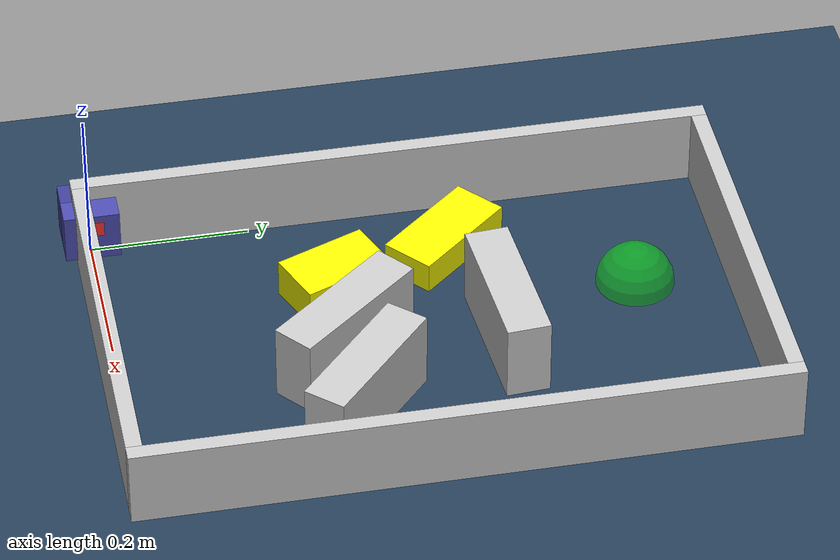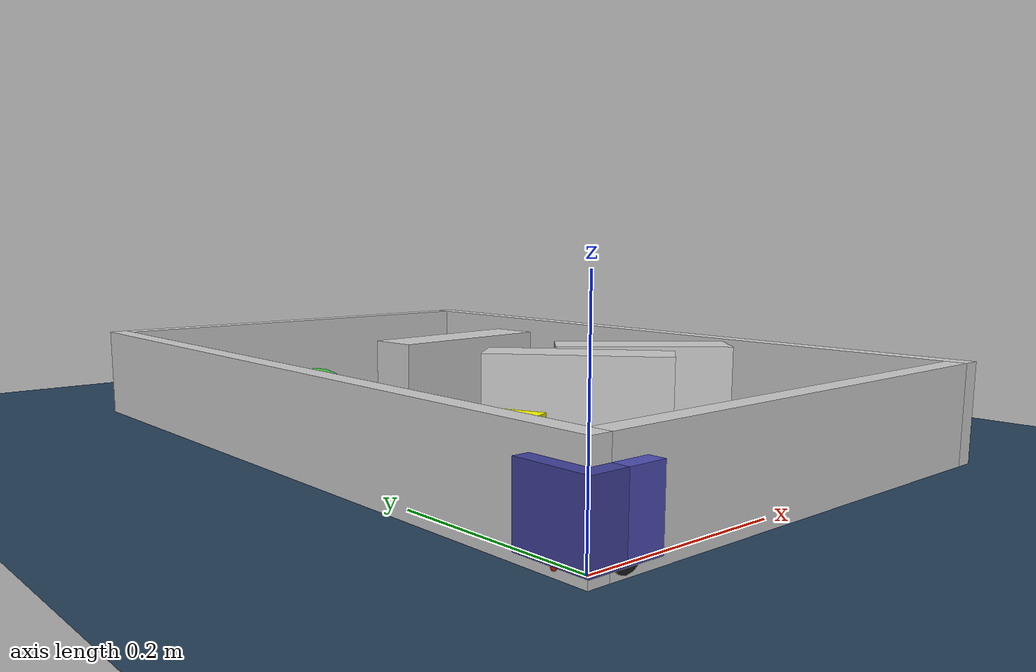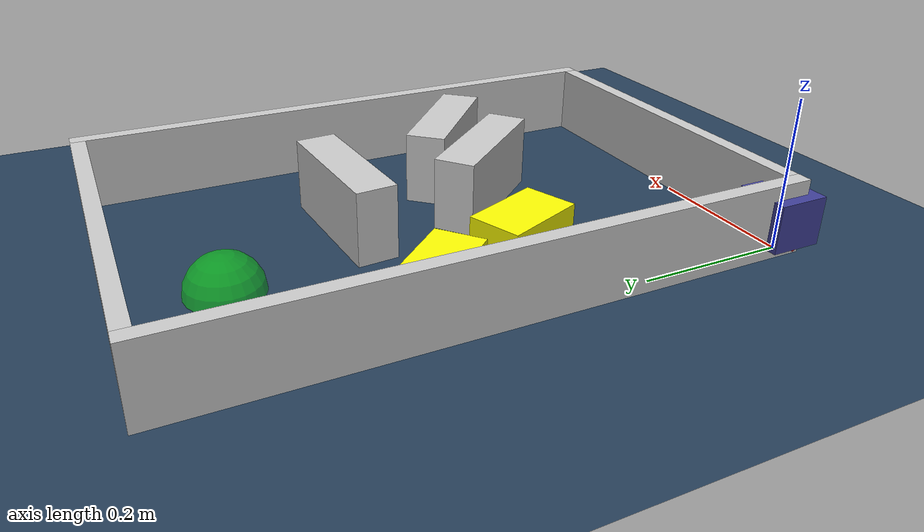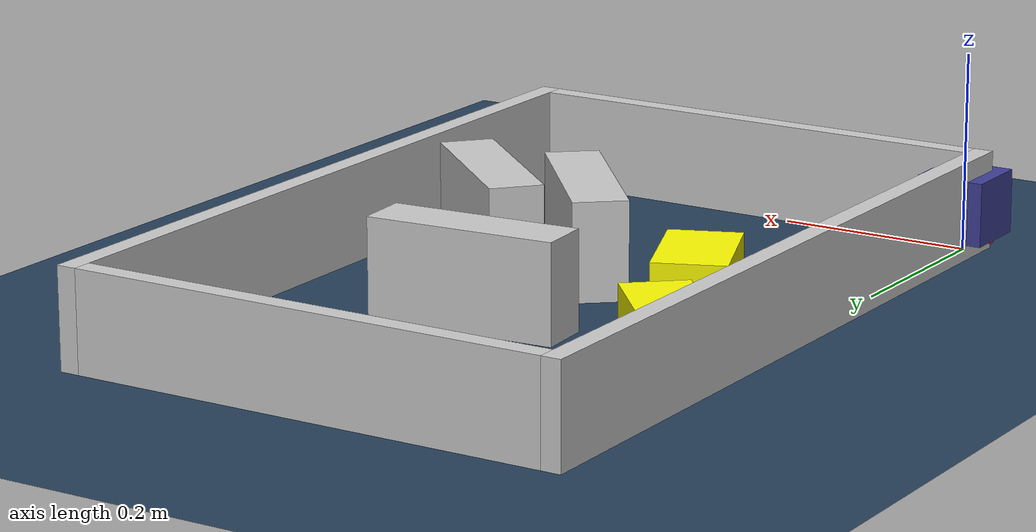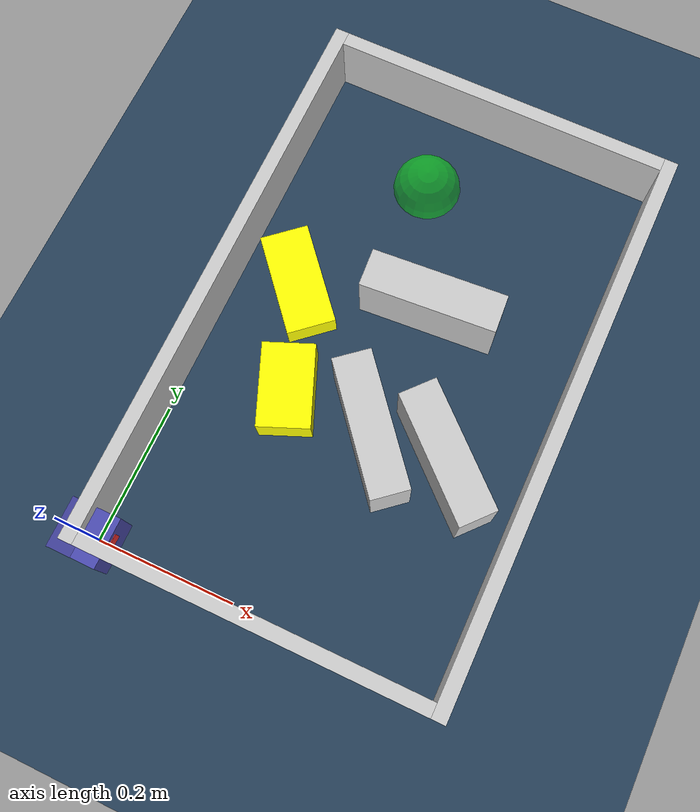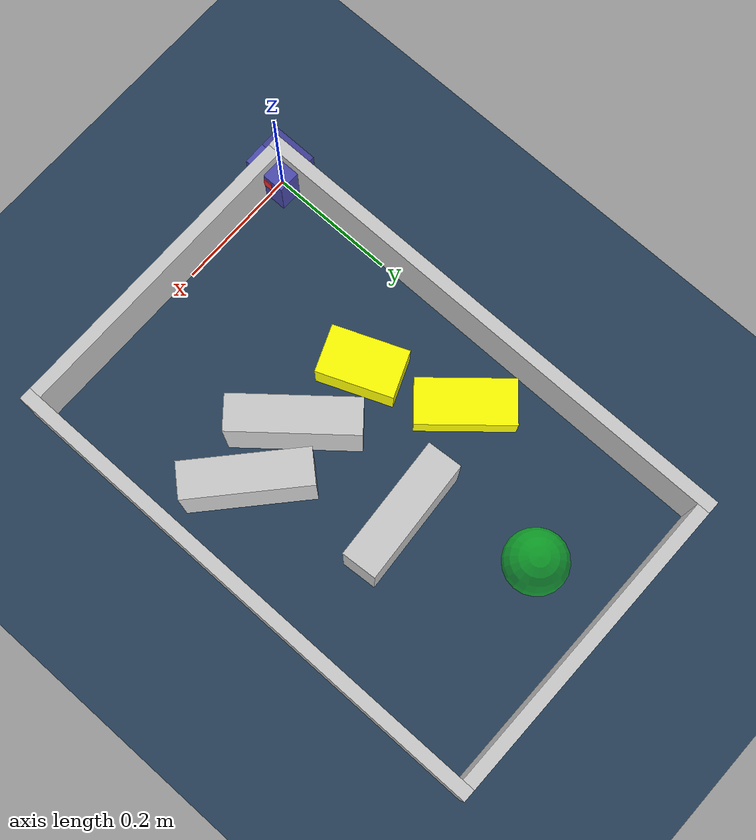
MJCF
<?xml version="1.0" ?>
<mujoco model="generated_environment">
  <option cone="elliptic" integrator="implicitfast" iterations="100" timestep="0.002"/>
  <default>
    <geom density="1"/>
  </default>
  <asset>
    <texture builtin="gradient" height="3072" rgb1="0.3 0.5 0.7" rgb2="0 0 0" type="skybox" width="512"/>
    <texture builtin="checker" height="300" mark="edge" markrgb="0.8 0.8 0.8" name="groundplane" rgb1="0.2 0.3 0.4" rgb2="0.1 0.2 0.3" type="2d" width="300"/>
    <material name="groundplane" reflectance="0.2" texrepeat="5 5" texture="groundplane" texuniform="true"/>
    <material name="robot" rgba="1.0 1.0 0.0 1.0"/>
  </asset>
  <include file="/home/dhruv/projects_dhruv/namo/namo_cpp/test_xml/little-car-modeling-package/assets/mjcf/little_car.xml"/>
  <worldbody>
    <light dir="0 0 -1" directional="true" pos="0 0 1.5"/>
    <geom condim="4" friction="0.5 0.005 0.001" material="groundplane" name="floor" size="0 0 0.05" type="plane"/>
    <body name="walls">
      <geom name="wall_1" condim="4" pos="-0.01 0.3875 0.05" friction="1 0.005 0.0001" rgba="0.800000011920929 0.800000011920929 0.800000011920929 1.0" size="0.01 0.40750000000000003 0.05" type="box"/>
      <geom name="wall_2" condim="4" pos="0.5 0.3875 0.05" friction="1 0.005 0.0001" rgba="0.800000011920929 0.800000011920929 0.800000011920929 1.0" size="0.01 0.40750000000000003 0.05" type="box"/>
      <geom name="wall_3" condim="4" pos="0.245 -0.01 0.05" friction="1 0.005 0.0001" rgba="0.800000011920929 0.800000011920929 0.800000011920929 1.0" size="0.245 0.01 0.05" type="box"/>
      <geom name="wall_4" condim="4" pos="0.245 0.785 0.05" friction="1 0.005 0.0001" rgba="0.800000011920929 0.800000011920929 0.800000011920929 1.0" size="0.245 0.01 0.05" type="box"/>
    </body>
    <body name="obstacle_1_movable">
      <geom name="obstacle_1_movable" condim="4" pos="0.08582317081874709 0.43723095028198844 0.02" quat="-0.3505767826029743 0 0 0.9365339927091525" friction="1 0.005 0.0001" rgba="1 1 0 1" size="0.035 0.075 0.02" type="box" mass="0.1"/>
      <joint type="free"/>
    </body>
    <body name="obstacle_2_movable">
      <geom name="obstacle_2_movable" condim="4" pos="0.14176566922491682 0.2886909895800314 0.025" quat="-0.19200938833665962 0 0 0.9813930888235264" friction="1 0.005 0.0001" rgba="1 1 0 1" size="0.0375 0.06 0.025" type="box" mass="0.1"/>
      <joint type="free"/>
    </body>
    <body name="wall_5">
      <geom name="wall_5" condim="4" pos="0.27406370904628696 0.4794064204418498 0.05" quat="0.6814471979036638 0 0 0.7318672806385355" friction="1 0.005 0.0001" rgba="0.800000011920929 0.800000011920929 0.800000011920929 1.0" size="0.0275 0.0975 0.05" type="box"/>
    </body>
    <body name="wall_6">
      <geom name="wall_6" condim="4" pos="0.2737787046525685 0.27791700087843624 0.05" quat="-0.34131159028925573 0 0 0.9399502105612931" friction="1 0.005 0.0001" rgba="0.800000011920929 0.800000011920929 0.800000011920929 1.0" size="0.0275 0.0975 0.05" type="box"/>
    </body>
    <body name="wall_7">
      <geom name="wall_7" condim="4" pos="0.3791859659969942 0.28518324156460706 0.05" quat="0.3579075598769876 0 0 0.9337570233111505" friction="1 0.005 0.0001" rgba="0.800000011920929 0.800000011920929 0.800000011920929 1.0" size="0.095 0.0275 0.05" type="box"/>
    </body>
    <site name="goal" type="sphere" size="0.05 0.05 0.05" rgba="0 1 0 0.5" pos="0.18865200000000001 0.661089 0.0"/>
  </worldbody>
</mujoco>

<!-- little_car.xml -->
<mujoco model="little_car">
  <compiler angle="radian" autolimits="true"/>
  <default>
    <geom condim="4"/>
    <joint damping="0.01" armature="0.0001"/>
  </default>
  <worldbody>
    <body name="car" pos="0 0 0.010000">
      <freejoint name="car_freejoint"/>
      <inertial pos="0.000000 0 0.037500" mass="0.350000"
                diaginertia="0.000266 0.000266 0.000286"/>
      <geom name="front_chassis_collision" type="box" pos="0.017500 0 0.037500"
            size="0.017500 0.035000 0.032500"
            rgba="0.3 0.3 0.7 1"/>
      <geom name="rear_chassis_collision" type="box" pos="-0.017500 0 0.037500"
            size="0.017500 0.035000 0.032500"
            rgba="0.25 0.25 0.6 1"/>
      <geom name="front_marker" type="box" pos="0.034000 0 0.050500"
            size="0.002000 0.015000 0.010000"
            rgba="1.0 0.2 0.2 1" contype="0" conaffinity="0"/>

      <body name="rear_support_body" pos="-0.030000 0.000000 0.002500">
        <joint name="rear_caster_joint" type="ball" damping="0.0001"/>
        <inertial pos="0 0 0" mass="0.025000"
                  diaginertia="0.000001 0.000001 0.000001"/>
        <geom name="rear_support" type="sphere"
              pos="0 0 0"
              size="0.002500"
              friction="0.000000 0.000000 0.000000"
              rgba="0.7 0.1 0.1 1"/>
      </body>

      <body name="front_support_body" pos="0.030000 0.000000 0.002500">
        <joint name="front_caster_joint" type="ball" damping="0.0001"/>
        <inertial pos="0 0 0" mass="0.025000"
                  diaginertia="0.000001 0.000001 0.000001"/>
        <geom name="front_support" type="sphere"
              pos="0 0 0"
              size="0.002500"
              friction="0.000000 0.000000 0.000000"
              rgba="0.1 0.7 0.1 1"/>
      </body>

      <body name="left_wheel" pos="0.000000 0.034000 0.015000">
        <inertial pos="0 0 0" mass="0.050000"
                  diaginertia="0.000003 0.000006 0.000003"/>
        <joint name="left_wheel_joint" type="hinge" axis="0 1 0"/>
        <geom name="left_wheel_collision" type="cylinder" size="0.015000 0.000500"
              euler="1.57079632679 0 0" rgba="0.1 0.1 0.1 1"/>
      </body>

      <body name="right_wheel" pos="0.000000 -0.034000 0.015000">
        <inertial pos="0 0 0" mass="0.050000"
                  diaginertia="0.000003 0.000006 0.000003"/>
        <joint name="right_wheel_joint" type="hinge" axis="0 1 0"/>
        <geom name="right_wheel_collision" type="cylinder" size="0.015000 0.000500"
              euler="1.57079632679 0 0" rgba="0.1 0.1 0.1 1"/>
      </body>
    </body>
  </worldbody>
  <contact>
    <exclude body1="car" body2="left_wheel"/>
    <exclude body1="car" body2="right_wheel"/>
  </contact>
  <actuator>
    <velocity name="left_wheel_drive" joint="left_wheel_joint"
              ctrlrange="-25.000000 25.000000"
              kv="0.750000" forcerange="-0.500000 0.500000"/>
    <velocity name="right_wheel_drive" joint="right_wheel_joint"
              ctrlrange="-25.000000 25.000000"
              kv="0.750000" forcerange="-0.500000 0.500000"/>
  </actuator>
</mujoco>
